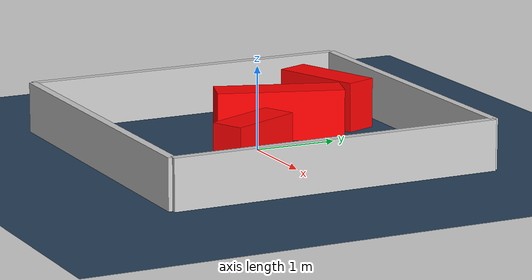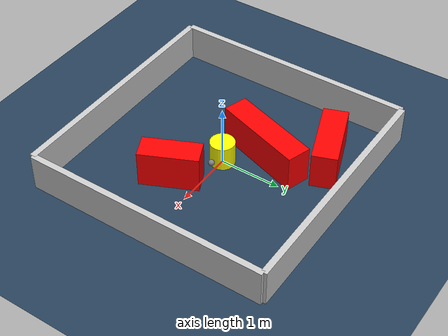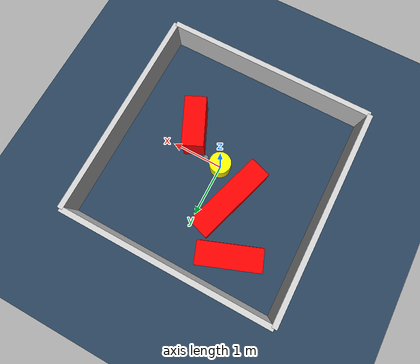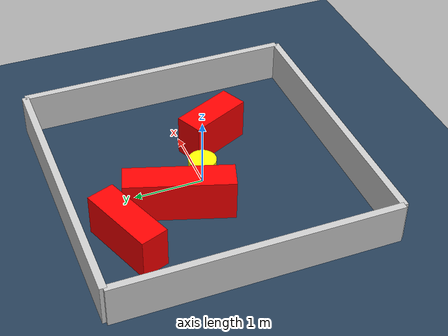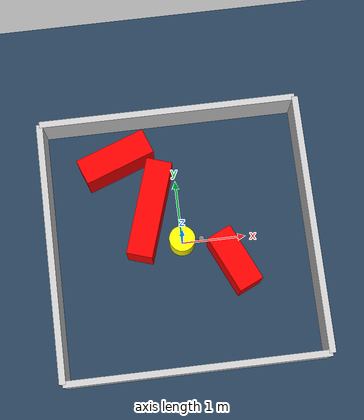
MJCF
<?xml version="1.0" ?>
<mujoco model="generated_environment">
  <option timestep="0.01" integrator="RK4" cone="elliptic"/>
  <default>
    <geom density="1"/>
  </default>
  <asset>
    <texture builtin="gradient" height="3072" rgb1="0.3 0.5 0.7" rgb2="0 0 0" type="skybox" width="512"/>
    <texture builtin="checker" height="300" mark="edge" markrgb="0.8 0.8 0.8" name="groundplane" rgb1="0.2 0.3 0.4" rgb2="0.1 0.2 0.3" type="2d" width="300"/>
    <material name="groundplane" reflectance="0.2" texrepeat="5 5" texture="groundplane" texuniform="true"/>
    <material name="robot" rgba="0.0 1.0 0.0 1"/>
  </asset>
  <worldbody>
    <light dir="0 0 -1" directional="true" pos="0 0 1.5"/>
    <geom condim="4" friction="1.0 0.005 0.001" material="groundplane" name="floor" size="0 0 0.05" type="plane"/>
    <body name="walls">
      <geom name="wall_1" condim="4" pos="-2.0 0.0 0.3" rgba="0.800000011920929 0.800000011920929 0.800000011920929 1.0" size="0.05 2.0 0.3" type="box"/>
      <geom name="wall_2" condim="4" pos="2.0 0.0 0.3" rgba="0.800000011920929 0.800000011920929 0.800000011920929 1.0" size="0.05 2.0 0.3" type="box"/>
      <geom name="wall_3" condim="4" pos="0.0 -2.0 0.3" rgba="0.800000011920929 0.800000011920929 0.800000011920929 1.0" size="2.0 0.05 0.3" type="box"/>
      <geom name="wall_4" condim="4" pos="0.0 2.0 0.3" rgba="0.800000011920929 0.800000011920929 0.800000011920929 1.0" size="2.0 0.05 0.3" type="box"/>
    </body>
    <body name="robot">
      <joint name="joint_x" type="slide" pos="0 0 0" axis="1 0 0"/>
      <joint name="joint_y" type="slide" pos="0 0 0" axis="0 1 0"/>
      <geom name="robot" type="sphere" pos="0.3 0.0 0.2" size="0.05" mass="5." friction="1.0 0.005 0.0001" condim="4" rgba="0.5 0.5 0.5 1.0"/>
      <site name="sensor_ball"/>
    </body>
    <body name="obstacle_movable_1">
      <geom name="obstacle_movable_1" condim="4" pos="0.0 0.0 0.2" euler="0 0 0.0" friction="1.0 0.005 0.001" rgba="1.0 1.0 0.0 1.0" size="0.2 0.2 0.0" type="cylinder" mass="0.1"/>
      <joint type="free"/>
    </body>
    <body name="obstacle_2_static">
      <geom name="obstacle_2_static" condim="4" pos="-0.44407692283193834 0.4989870974471138 0.3" euler="0 0 72.06537777818791" friction="1.0 0.005 0.001" rgba="1 0 0 1" size="0.7575831215382236 0.2 0.3" type="box"/>
    </body>
    <body name="obstacle_3_static">
      <geom name="obstacle_3_static" condim="4" pos="-0.882945193715054 1.3616098246327797 0.3" euler="0 0 20.360185325624936" friction="1.0 0.005 0.001" rgba="1 0 0 1" size="0.5635641777551443 0.2 0.3" type="box"/>
    </body>
    <body name="obstacle_4_static">
      <geom name="obstacle_4_static" condim="4" pos="0.7527833297701687 -0.42531769907680683 0.3" euler="0 0 294.747108888114" friction="1.0 0.005 0.001" rgba="1 0 0 1" size="0.46963707172177016 0.2 0.3" type="box"/>
    </body>
  </worldbody>
  <actuator>
    <motor name="actuator_x" joint="joint_x" gear="1" ctrlrange="-1 1"/>
    <motor name="actuator_y" joint="joint_y" gear="1" ctrlrange="-1 1"/>
  </actuator>
</mujoco>
